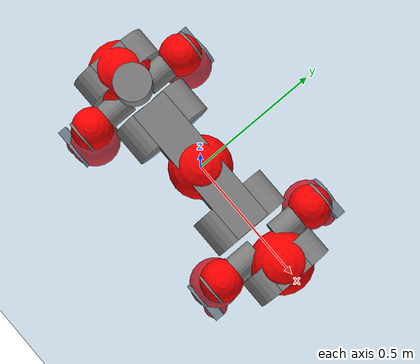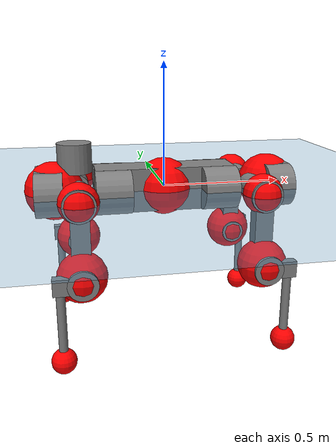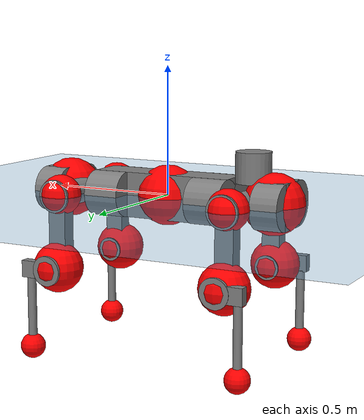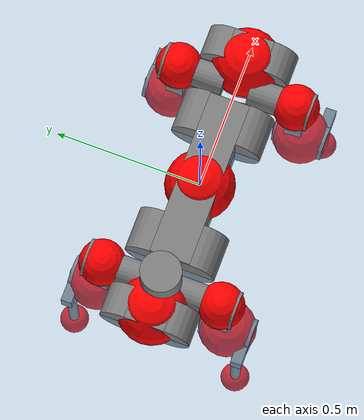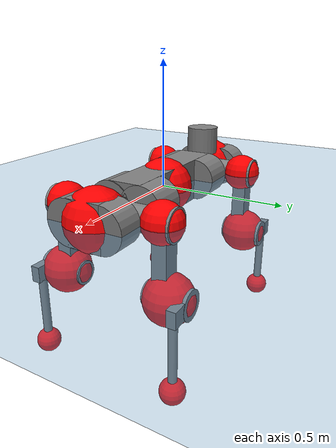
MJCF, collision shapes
<mujoco model="anymal_c">
  <compiler angle="radian" assetdir="assets" balanceinertia="true" inertiafromgeom="false"/>

  <option timestep="0.005" density="1.2" viscosity="2e-05"/>

  <size nkey="1"/>

  <visual>
    <quality shadowsize="8192"/>
    <map shadowclip="0.5"/>
  </visual>

  <default>
    <default class="/">
      <material specular="0" shininess="0.25"/>
      <geom contype="0" conaffinity="0" group="1" solref="-1000 -80"/>
      <site size="0.01 0.005 0.005" group="5"/>
      <general forcelimited="true" forcerange="-80 80" biastype="affine" gainprm="80" biasprm="0 -80 -2"/>
      <default class="anymal_c">
        <joint armature="0.01" damping="0.01" frictionloss="0.1"/>
        <default class="visual">
          <geom type="mesh" group="2"/>
          <default class="visual_zflip"/>
        </default>
        <default class="collision">
          <geom type="cylinder" group="3"/>
          <default class="foot">
            <geom size="0.03 0 0" type="sphere" condim="6" priority="1" friction="0.8 0.02 0.01" solimp="0.015 1 0.03"/>
          </default>
        </default>
      </default>
      <default class="reward_collision_sphere">
        <geom group="5" rgba="1 0 0 1"/>
      </default>
    </default>
  </default>

  <asset>
    <texture type="skybox" colorspace="auto" name="//unnamed_texture_0" builtin="gradient" rgb1="0.95 0.95 0.95" rgb2="0.95 0.95 0.95" width="100" height="600"/>
    <texture type="2d" colorspace="auto" name="texplane" builtin="checker" rgb1="0.345 0.575 0.748" rgb2="0.345 0.575 0.748" markrgb="1 1 1" width="512" height="512"/>
    <texture type="2d" colorspace="linear" name="base" file="base.png"/>
    <texture type="2d" colorspace="linear" name="top_shell" file="top_shell.png"/>
    <texture type="2d" colorspace="linear" name="bottom_shell" file="bottom_shell.png"/>
    <texture type="2d" colorspace="linear" name="remote" file="remote.png"/>
    <texture type="2d" colorspace="linear" name="hatch" file="hatch.png"/>
    <texture type="2d" colorspace="linear" name="handle" file="handle.png"/>
    <texture type="2d" colorspace="linear" name="face" file="face.png"/>
    <texture type="2d" colorspace="linear" name="battery" file="battery.png"/>
    <texture type="2d" colorspace="linear" name="lidar_cage" file="lidar_cage.png"/>
    <texture type="2d" colorspace="linear" name="depth_camera" file="depth_camera.png"/>
    <texture type="2d" colorspace="linear" name="wide_angle_camera" file="wide_angle_camera.png"/>
    <texture type="2d" colorspace="linear" name="lidar" file="lidar.png"/>
    <texture type="2d" colorspace="linear" name="drive" file="drive.png"/>
    <texture type="2d" colorspace="linear" name="hip_l" file="hip_l.png"/>
    <texture type="2d" colorspace="linear" name="shank_l" file="shank_l.png"/>
    <texture type="2d" colorspace="linear" name="foot" file="foot.png"/>
    <texture type="2d" colorspace="linear" name="thigh" file="thigh.png"/>
    <texture type="2d" colorspace="linear" name="shank_r" file="shank_r.png"/>
    <texture type="2d" colorspace="linear" name="hip_r" file="hip_r.png"/>
    <material name="MatPlane" class="/" texture="texplane" texuniform="true" texrepeat="2 2" specular="0.9" shininess="0.5"/>
    <material name="black_plastic" class="/" rgba="0.007 0.007 0.007 1"/>
    <material name="green" class="/" rgba="0.052 0.178 0.033 1"/>
    <material name="red" class="/" rgba="0.178 0.006 0.005 1"/>
    <material name="yellow" class="/" rgba="0.178 0.119 0.006 1"/>
    <material name="lwl" class="/" rgba="0.8 0.8 0.8 1"/>
    <material name="base" class="/" texture="base"/>
    <material name="top_shell" class="/" texture="top_shell"/>
    <material name="bottom_shell" class="/" texture="bottom_shell"/>
    <material name="hip_l" class="/" texture="hip_l"/>
    <material name="thigh" class="/" texture="thigh"/>
    <material name="shank_l" class="/" texture="shank_l"/>
    <material name="foot" class="/" texture="foot"/>
    <material name="hip_r" class="/" texture="hip_r"/>
    <material name="shank" class="/" texture="shank_r"/>
    <material name="hatch" class="/" texture="hatch"/>
    <material name="remote" class="/" texture="remote"/>
    <material name="handle" class="/" texture="handle"/>
    <material name="face" class="/" texture="face"/>
    <material name="depth_camera" class="/" texture="depth_camera"/>
    <material name="wide_angle_camera" class="/" texture="wide_angle_camera"/>
    <material name="battery" class="/" texture="battery"/>
    <material name="lidar_cage" class="/" texture="lidar_cage"/>
    <material name="lidar" class="/" texture="lidar"/>
    <material name="drive" class="/" texture="drive"/>
    <mesh name="base_0" class="/" file="base_0.obj"/>
    <mesh name="base_1" class="/" file="base_1.obj"/>
    <mesh name="base_2" class="/" file="base_2.obj"/>
    <mesh name="base_3" class="/" file="base_3.obj"/>
    <mesh name="base_4" class="/" file="base_4.obj"/>
    <mesh name="base_5" class="/" file="base_5.obj"/>
    <mesh name="top_shell" class="/" file="top_shell.obj"/>
    <mesh name="bottom_shell" class="/" file="bottom_shell.obj"/>
    <mesh name="remote" class="/" file="remote.obj"/>
    <mesh name="handle" class="/" file="handle.obj"/>
    <mesh name="face" class="/" file="face.obj"/>
    <mesh name="wide_angle_camera" class="/" file="wide_angle_camera.obj"/>
    <mesh name="depth_camera" class="/" file="depth_camera.obj"/>
    <mesh name="battery" class="/" file="battery.obj"/>
    <mesh name="lidar_cage" class="/" file="lidar_cage.obj"/>
    <mesh name="lidar" class="/" file="lidar.obj"/>
    <mesh name="drive" class="/" file="drive.obj"/>
    <mesh name="hip_l" class="/" file="hip_l.obj"/>
    <mesh name="thigh" class="/" file="thigh.obj"/>
    <mesh name="shank_l" class="/" file="shank_l.obj"/>
    <mesh name="foot" class="/" file="foot.obj"/>
    <mesh name="hip_r" class="/" file="hip_r.obj"/>
    <mesh name="hatch" class="/" file="hatch.obj"/>
    <mesh name="shank_r" class="/" file="shank_r.obj"/>
  </asset>

  <worldbody>
    <geom name="floor" class="/" size="100 100 0.125" type="plane" group="0" material="MatPlane"/>
    <light name="toplight_shadow" class="/" pos="0 0 5" dir="0.0990148 0.0990148 -0.990148" type="directional" ambient="0.04 0.04 0.04" diffuse="0.55 0.55 0.55" specular="0.12 0.12 0.12"/>
    <light name="toplight_fill" class="/" pos="0 0 5" dir="0.0990148 0.0990148 -0.990148" type="directional" castshadow="false" ambient="0.04 0.04 0.04" diffuse="0.3 0.3 0.3" specular="0.08 0.08 0.08"/>
    <body name="trunk" childclass="anymal_c" pos="-0.000476471 9.69588e-05 0.000186789" quat="1 -0.000111918 -2.19599e-05 8.92507e-05">
      <inertial pos="0.00164529 0.000280967 0.0493857" quat="0.498561 0.499864 0.499865 0.501705" mass="17.9902" diaginertia="0.616464 0.496074 0.208227"/>
      <joint name="//unnamed_joint_0" type="free" armature="0" damping="0" frictionloss="0"/>
      <geom name="//unnamed_geom_1" class="visual" material="green" mesh="base_0"/>
      <geom name="//unnamed_geom_2" class="visual" material="yellow" mesh="base_1"/>
      <geom name="//unnamed_geom_3" class="visual" material="red" mesh="base_2"/>
      <geom name="//unnamed_geom_4" class="visual" material="black_plastic" mesh="base_3"/>
      <geom name="//unnamed_geom_5" class="visual" material="lwl" mesh="base_4"/>
      <geom name="//unnamed_geom_6" class="visual" material="base" mesh="base_5"/>
      <geom name="trunk_1" class="collision" size="0.284145 0.0685867 0.0881829" type="box"/>
      <geom name="trunk_2" class="collision" size="0.0881829 0.0710362" pos="0.215923 0.0669092 0" quat="0.707107 0 0.707107 0"/>
      <geom name="trunk_3" class="collision" size="0.0881829 0.0710362" pos="-0.215923 0.0669092 0" quat="0.707107 0 0.707107 0"/>
      <geom name="trunk_4" class="collision" size="0.0881829 0.0710362" pos="0.215923 -0.0669092 0" quat="0.707107 0 0.707107 0"/>
      <geom name="trunk_5" class="collision" size="0.0881829 0.0710362" pos="-0.215923 -0.0669092 0" quat="0.707107 0 0.707107 0"/>
      <geom name="//unnamed_geom_12" class="visual" material="top_shell" mesh="top_shell"/>
      <geom name="//unnamed_geom_13" class="visual" material="bottom_shell" mesh="bottom_shell"/>
      <geom name="//unnamed_geom_14" class="visual" material="remote" mesh="remote"/>
      <geom name="//unnamed_geom_15" class="visual" material="handle" mesh="handle"/>
      <geom name="//unnamed_geom_16" class="visual" pos="0.411495 0 0" quat="1 0 0 0" material="face" mesh="face"/>
      <geom name="trunk_6" class="collision" size="0.0538895 0.0685867 0.0881829" pos="0.466096 0 0" type="box"/>
      <geom name="//unnamed_geom_18" class="collision" size="0.0881829 0.0538895" pos="0.466096 0.0669092 0" quat="0.707107 0 0.707107 0"/>
      <geom name="//unnamed_geom_19" class="collision" size="0.0881829 0.0538895" pos="0.466096 -0.0669092 0" quat="0.707107 0 0.707107 0"/>
      <geom name="//unnamed_geom_20" class="visual" pos="0.458303 0 -0.0289178" quat="0.965926 0 0.258819 0" material="depth_camera" mesh="depth_camera"/>
      <geom name="//unnamed_geom_21" class="visual" pos="0.509281 0 0.0148328" material="wide_angle_camera" mesh="wide_angle_camera"/>
      <geom name="//unnamed_geom_22" class="visual_zflip" pos="-0.411495 0 0" quat="0 0 0 1" material="face" mesh="face"/>
      <geom name="trunk_7" class="collision" size="0.0538895 0.0685867 0.0881829" pos="-0.466096 0 0" quat="0 0 0 1" type="box"/>
      <geom name="//unnamed_geom_24" class="collision" size="0.0881829 0.0538895" pos="-0.466096 -0.0669092 0" quat="0 -0.707107 0 0.707107"/>
      <geom name="//unnamed_geom_25" class="collision" size="0.0881829 0.0538895" pos="-0.466096 0.0669092 0" quat="0 -0.707107 0 0.707107"/>
      <geom name="//unnamed_geom_26" class="visual" pos="-0.458303 0 -0.0289178" quat="0 -0.258819 0 0.965926" material="depth_camera" mesh="depth_camera"/>
      <geom name="//unnamed_geom_27" class="visual_zflip" pos="-0.509281 0 0.0148328" quat="0 0 0 1" material="wide_angle_camera" mesh="wide_angle_camera"/>
      <geom name="//unnamed_geom_28" class="visual" material="battery" mesh="battery"/>
      <geom name="//unnamed_geom_29" class="visual" pos="0 0.0725996 0.0287983" quat="0.683013 -0.183013 0.183013 0.683013" material="depth_camera" mesh="depth_camera"/>
      <geom name="//unnamed_geom_30" class="visual" pos="0 -0.0725996 0.0287983" quat="0.683013 0.183013 0.183013 -0.683013" material="depth_camera" mesh="depth_camera"/>
      <geom name="//unnamed_geom_31" class="visual" pos="-0.361361 0 0.0728262" quat="1 0 0 0" material="lidar_cage" mesh="lidar_cage"/>
      <geom name="trunk_8" class="collision" size="0.0685867 0.0587886" pos="-0.361361 0 0.132276"/>
      <geom name="//unnamed_geom_33" class="visual" pos="-0.361361 -1.44991e-05 0.140896" quat="0.707107 0 0 -0.707107" material="lidar" mesh="lidar"/>
      <geom name="//unnamed_geom_34" class="visual" pos="0.297726 0.0994203 -6.03544e-10" quat="0.258819 0.965926 0 0" material="drive" mesh="drive"/>
      <geom name="//unnamed_geom_35" class="visual" pos="0.297726 -0.0994203 6.03544e-10" quat="0.258819 -0.965926 0 0" material="drive" mesh="drive"/>
      <geom name="//unnamed_geom_36" class="visual" pos="-0.297726 0.0994203 6.03544e-10" quat="0 0 0.965926 -0.258819" material="drive" mesh="drive"/>
      <geom name="//unnamed_geom_37" class="visual" pos="-0.297726 -0.0994203 -6.03544e-10" quat="0 0 -0.965926 -0.258819" material="drive" mesh="drive"/>
      <geom name="//unnamed_geom_38" class="visual" pos="0.115159 0 0.0723308" quat="1 0 0 0" material="hatch" mesh="hatch"/>
      <geom name="//unnamed_geom_39" class="reward_collision_sphere" size="0.117577"/>
      <geom name="//unnamed_geom_40" class="reward_collision_sphere" size="0.117577" pos="0.446738 0 0"/>
      <geom name="//unnamed_geom_41" class="reward_collision_sphere" size="0.117577" pos="-0.446738 0 0"/>
      <site name="imu" pos="0.246533 0.00780776 0.0464127" size="0.0097981"/>
      <camera name="track" pos="0 -1.91169 0" quat="0.707107 0.707107 0 0" mode="trackcom"/>
      <camera name="ego_camera" pos="0.446738 0 -0.0396333" quat="-0.5 -0.5 0.5 0.5"/>
      <body name="LF_HIP" pos="0.298961 0.1006 0.000541428" quat="0.25882 0.965926 -1.01994e-06 -4.48322e-06">
        <inertial pos="0.0562813 -0.013518 -0.00778196" quat="-0.128303 0.709824 -0.135088 0.679293" mass="2.57827" diaginertia="0.00561421 0.00392821 0.00312247"/>
        <joint name="LF_HAA" pos="0 0 0" axis="1 -0.000463668 0.000200323" range="-0.720432 0.486816" armature="0.0098071" damping="0.00642447" frictionloss="0.102199"/>
        <geom name="//unnamed_geom_42" class="visual" pos="0 -3.55038e-05 5.83147e-06" quat="0.258819 -0.965926 0 0" material="hip_l" mesh="hip_l"/>
        <geom name="//unnamed_geom_43" class="visual" pos="0.0594658 -0.0715819 -0.0415866" quat="0.183013 -0.683013 0.683013 0.183013" material="drive" mesh="drive"/>
        <geom name="//unnamed_geom_44" class="collision" size="0.0489905 0.0685867" pos="0.0594658 -0.0114317 -0.0068417" quat="-0.353553 -0.612372 0.612372 -0.353553"/>
        <body name="LF_THIGH" pos="0.0604277 -0.0698627 -0.0420953" quat="0.18304 -0.683094 0.682951 0.182912">
          <inertial pos="0.030673 0.00014639 -0.244036" quat="0.993069 -0.00736725 -0.0789274 0.0867762" mass="2.93007" diaginertia="0.0293019 0.0238342 0.00402988"/>
          <joint name="LF_HFE" pos="0 0 0" axis="0.999999 0.000367802 0.000968134" stiffness="0.00383954" range="-3.15328 3.12118" armature="0.00956075" damping="0.00492229" frictionloss="0.10153"/>
          <geom name="//unnamed_geom_45" class="visual" pos="0.00073427 1.15704e-06 0" quat="0.707107 0 0 -0.707107" material="thigh" mesh="thigh"/>
          <geom name="//unnamed_geom_46" class="collision" size="0.0636876 0.0391924" pos="0.03971 0 0" quat="0.5 0.5 -0.5 -0.5"/>
          <geom name="//unnamed_geom_47" class="collision" size="0.0367429 0.0293943 0.138461" pos="0.0297825 0 -0.140019" quat="0.707107 0 0 -0.707107" type="box"/>
          <geom name="//unnamed_geom_48" class="visual" pos="0.0995729 0 -0.282387" quat="1 0 0 0" material="drive" mesh="drive"/>
          <geom name="//unnamed_geom_49" class="collision" size="0.0489905 0.0685867" pos="0.0300803 0 -0.282387" quat="0.707107 0 0.707107 0"/>
          <geom name="//unnamed_geom_50" class="reward_collision_sphere" size="0.0783848" pos="0.0248188 0 0"/>
          <body name="LF_SHANK" pos="0.10009 -0.00081937 -0.282536" quat="1 0.000175272 -0.0001812 -9.17466e-05">
            <inertial pos="0.0055482 -0.0580732 -0.0795804" quat="0.993027 -0.115066 -0.00144373 -0.025612" mass="0.550722" diaginertia="0.00984318 0.00732169 0.00107099"/>
            <joint name="LF_KFE" pos="0 0 0" axis="1 -0.000143442 0.000950901" range="-3.15739 3.13903" armature="0.00993672" damping="0.00791492" frictionloss="0.0985818"/>
            <geom name="//unnamed_geom_51" class="visual" pos="0.000239429 0.00127665 0" quat="0.707107 0 0 -0.707107" material="shank_l" mesh="shank_l"/>
            <geom name="LF_kfe_act" class="collision" size="0.0587886 0.0195962" pos="0.019855 0 0" quat="0.5 0.5 -0.5 -0.5"/>
            <geom name="//unnamed_geom_53" class="collision" size="0.0563381 0.0330686 0.0186164" pos="0.019855 -0.0549601 0" quat="0.5 0.5 -0.5 -0.5" type="box"/>
            <geom name="//unnamed_geom_54" class="visual" pos="0.0129553 -0.0836552 -0.334872" quat="0.382683 0 0 -0.92388" material="foot" mesh="foot"/>
            <geom name="LF_calf" class="collision" size="0.0171467 0.1384" pos="0.0129554 -0.0840666 -0.167436" quat="0.707107 0 0 -0.707107"/>
            <geom name="LF_foot" class="foot" size="0.0304014" pos="0.0129554 -0.0840666 -0.312578" quat="0.707107 0 0 -0.707107"/>
            <geom name="//unnamed_geom_57" class="reward_collision_sphere" size="0.097981" pos="-0.0496375 0 0"/>
            <geom name="//unnamed_geom_58" class="reward_collision_sphere" size="0.0489905" pos="0.0129554 -0.0840666 -0.312578"/>
            <site name="LF_foot" class="foot" pos="0.0129554 -0.0840666 -0.312578" quat="0.707107 0 0 -0.707107" size="0.0097981"/>
          </body>
        </body>
      </body>
      <body name="RF_HIP" pos="0.298378 -0.0999057 1.591e-05" quat="0.258809 -0.965928 -5.49111e-06 -2.56488e-06">
        <inertial pos="0.0571997 0.0144631 -0.00742805" quat="0.1361 0.679889 0.127952 0.709124" mass="2.63082" diaginertia="0.00571294 0.00392706 0.00318114"/>
        <joint name="RF_HAA" pos="0 0 0" axis="0.999986 -0.0049867 0.00161978" range="-0.491148 0.719734" armature="0.0097716" damping="0.0125904" frictionloss="0.0984128"/>
        <geom name="//unnamed_geom_59" class="visual" pos="0 3.55035e-05 5.83145e-06" quat="0.258819 0.965926 0 0" material="hip_r" mesh="hip_r"/>
        <geom name="//unnamed_geom_60" class="visual" pos="0.0594658 0.0715819 -0.0415866" quat="0.183013 0.683013 0.683013 -0.183013" material="drive" mesh="drive"/>
        <geom name="//unnamed_geom_61" class="collision" size="0.0489905 0.0685867" pos="0.0594658 0.0114317 -0.0068417" quat="-0.353553 0.612372 0.612372 0.353553"/>
        <body name="RF_THIGH" pos="0.0591409 0.0695655 -0.0416443" quat="0.182839 0.68327 0.682843 -0.182862">
          <inertial pos="0.0306536 -0.000402304 -0.242569" quat="0.993229 -0.00506402 -0.0779486 0.0859866" mass="2.84959" diaginertia="0.0293528 0.0239316 0.00397596"/>
          <joint name="RF_HFE" pos="0 0 0" axis="1 1.4714e-06 9.37959e-07" stiffness="0.00771987" range="-3.1378 3.13364" armature="0.0101948" damping="0.00961437" frictionloss="0.0972166"/>
          <geom name="//unnamed_geom_62" class="visual" pos="0.00073427 1.15704e-06 0" quat="0.707107 0 0 -0.707107" material="thigh" mesh="thigh"/>
          <geom name="//unnamed_geom_63" class="collision" size="0.0636876 0.0391924" pos="0.03971 0 0" quat="0.5 0.5 0.5 0.5"/>
          <geom name="//unnamed_geom_64" class="collision" size="0.0367429 0.0293943 0.138461" pos="0.0297825 0 -0.140019" quat="0.707107 0 0 0.707107" type="box"/>
          <geom name="//unnamed_geom_65" class="visual" pos="0.0995729 0 -0.282387" quat="1 0 0 0" material="drive" mesh="drive"/>
          <geom name="//unnamed_geom_66" class="collision" size="0.0489905 0.0685867" pos="0.0300803 0 -0.282387" quat="0.707107 0 0.707107 0"/>
          <geom name="//unnamed_geom_67" class="reward_collision_sphere" size="0.0783848" pos="0.0248188 0 0"/>
          <body name="RF_SHANK" pos="0.10018 -0.000198648 -0.282493" quat="1 -2.84596e-05 0.000176946 -0.000247492">
            <inertial pos="0.00642751 0.0585792 -0.0798035" quat="0.992937 0.116121 -0.000670956 0.0243343" mass="0.543085" diaginertia="0.00969377 0.00733221 0.00105709"/>
            <joint name="RF_KFE" pos="0 0 0" axis="0.999994 0.00332363 -6.8895e-05" range="-3.13178 3.1528" armature="0.00942814" damping="0.00764736" frictionloss="0.0964584"/>
            <geom name="//unnamed_geom_68" class="visual" pos="0.000239428 -0.00127665 0" quat="0.707107 0 0 0.707107" material="shank" mesh="shank_r"/>
            <geom name="RF_kfe_act" class="collision" size="0.0587886 0.0195962" pos="0.019855 0 0" quat="0.5 0.5 0.5 0.5"/>
            <geom name="//unnamed_geom_70" class="collision" size="0.0563381 0.0330686 0.0186164" pos="0.019855 0.0549601 0" quat="0.5 0.5 0.5 0.5" type="box"/>
            <geom name="//unnamed_geom_71" class="visual" pos="0.0129555 0.0836552 -0.334872" quat="0.382683 0 0 0.92388" material="foot" mesh="foot"/>
            <geom name="RF_calf" class="collision" size="0.0171467 0.1384" pos="0.0129554 0.0840666 -0.167436" quat="0.707107 0 0 0.707107"/>
            <geom name="RF_foot" class="foot" size="0.0295004" pos="0.0129554 0.0840666 -0.312578" quat="0.707107 0 0 0.707107"/>
            <geom name="//unnamed_geom_74" class="reward_collision_sphere" size="0.097981" pos="-0.0496375 0 0"/>
            <geom name="//unnamed_geom_75" class="reward_collision_sphere" size="0.0489905" pos="0.0129554 0.0840666 -0.312578"/>
            <site name="RF_foot" class="foot" pos="0.0129554 0.0840666 -0.312578" quat="0.707107 0 0 0.707107" size="0.0097981"/>
          </body>
        </body>
      </body>
      <body name="LH_HIP" pos="-0.297432 0.10041 0.000583537" quat="-7.54165e-05 8.99211e-05 0.965894 -0.258938">
        <inertial pos="0.0563474 0.0135537 -0.00842249" quat="0.13261 0.679583 0.12565 0.710488" mass="2.61763" diaginertia="0.00570008 0.00390519 0.00316864"/>
        <joint name="LH_HAA" pos="0 0 0" axis="0.999999 -0.00132227 -0.000945251" range="-0.497285 0.723997" armature="0.00988422" damping="0.0075436" frictionloss="0.0982278"/>
        <geom name="//unnamed_geom_76" class="visual" pos="0 3.55035e-05 5.83145e-06" quat="-0.258819 -0.965926 0 0" material="hip_r" mesh="hip_r"/>
        <geom name="//unnamed_geom_77" class="visual" pos="0.0594658 0.0715819 -0.0415866" quat="0.183013 0.683013 0.683013 -0.183013" material="drive" mesh="drive"/>
        <geom name="//unnamed_geom_78" class="collision" size="0.0489905 0.0685867" pos="0.0594658 0.0114317 -0.0068417" quat="-0.353553 0.612372 0.612372 0.353553"/>
        <body name="LH_THIGH" pos="0.0588543 0.0696605 -0.0418852" quat="0.183008 0.683 0.683028 -0.183007">
          <inertial pos="0.0300973 0.000205922 -0.24335" quat="0.992775 -0.00514189 -0.0806597 0.0886824" mass="2.92249" diaginertia="0.0293329 0.0238433 0.00404234"/>
          <joint name="LH_HFE" pos="0 0 0" axis="1 0.000126955 0.000536064" range="-3.13016 3.1569" armature="0.00997316" damping="0.0127481" frictionloss="0.0978472"/>
          <geom name="//unnamed_geom_79" class="visual" pos="0.00073427 1.15704e-06 0" quat="0.707107 0 0 -0.707107" material="thigh" mesh="thigh"/>
          <geom name="//unnamed_geom_80" class="collision" size="0.0636876 0.0391924" pos="0.03971 0 0" quat="0.5 0.5 -0.5 -0.5"/>
          <geom name="//unnamed_geom_81" class="collision" size="0.0367429 0.0293943 0.138461" pos="0.0297825 0 -0.140019" quat="0.707107 0 0 -0.707107" type="box"/>
          <geom name="//unnamed_geom_82" class="visual" pos="0.0995729 0 -0.282387" quat="1 0 0 0" material="drive" mesh="drive"/>
          <geom name="//unnamed_geom_83" class="collision" size="0.0489905 0.0685867" pos="0.0300803 0 -0.282387" quat="0.707107 0 0.707107 0"/>
          <geom name="//unnamed_geom_84" class="reward_collision_sphere" size="0.0783848" pos="0.0248188 0 0"/>
          <body name="LH_SHANK" pos="0.099579 -0.000309865 -0.282605" quat="1 -3.39419e-06 -1.66454e-05 8.27804e-05">
            <inertial pos="0.00489148 0.0580405 -0.0801606" quat="0.993086 0.114364 0.00270402 0.0263262" mass="0.558284" diaginertia="0.00998473 0.00738567 0.00108221"/>
            <joint name="LH_KFE" pos="0 0 0" axis="0.999998 -0.00171131 -0.000507682" stiffness="0.000869535" range="-3.15535 3.15784" armature="0.00976529" damping="0.00648215" frictionloss="0.101055"/>
            <geom name="//unnamed_geom_85" class="visual" pos="0.000239428 -0.00127665 0" quat="-0.707107 0 0 -0.707107" material="shank" mesh="shank_r"/>
            <geom name="LH_kfe_act" class="collision" size="0.0587886 0.0195962" pos="0.019855 0 0" quat="0.5 0.5 -0.5 -0.5"/>
            <geom name="//unnamed_geom_87" class="collision" size="0.0563381 0.0330686 0.0186164" pos="0.019855 0.0549601 0" quat="0.5 0.5 -0.5 -0.5" type="box"/>
            <geom name="//unnamed_geom_88" class="visual" pos="0.0129555 0.0836552 -0.334872" quat="-0.382683 0 0 -0.92388" material="foot" mesh="foot"/>
            <geom name="LH_calf" class="collision" size="0.0171467 0.1384" pos="0.0129554 0.0840666 -0.167436" quat="0.707107 0 0 -0.707107"/>
            <geom name="LH_foot" class="foot" size="0.0299305" pos="0.0129554 0.0840666 -0.312578" quat="0.707107 0 0 -0.707107"/>
            <geom name="//unnamed_geom_91" class="reward_collision_sphere" size="0.097981" pos="-0.0496375 0 0"/>
            <geom name="//unnamed_geom_92" class="reward_collision_sphere" size="0.0489905" pos="0.0129554 0.0840666 -0.312578"/>
            <site name="LH_foot" class="foot" pos="0.0129554 0.0840666 -0.312578" quat="0.707107 0 0 -0.707107" size="0.0097981"/>
          </body>
        </body>
      </body>
      <body name="RH_HIP" pos="-0.297126 -0.0992994 -0.000400402" quat="3.24897e-05 3.83287e-05 -0.965925 -0.258822">
        <inertial pos="0.057039 -0.0153143 -0.00860552" quat="-0.126391 0.707981 -0.137099 0.681169" mass="2.57996" diaginertia="0.00562223 0.00390671 0.0031239"/>
        <joint name="RH_HAA" pos="0 0 0" axis="1 0.000367766 -0.000458717" range="-0.718108 0.479002" armature="0.00987941" damping="0.0141337" frictionloss="0.0980717"/>
        <geom name="//unnamed_geom_93" class="visual" pos="0 -3.55038e-05 5.83147e-06" quat="-0.258819 0.965926 0 0" material="hip_l" mesh="hip_l"/>
        <geom name="//unnamed_geom_94" class="visual" pos="0.0594658 -0.0715819 -0.0415866" quat="-0.183013 0.683013 -0.683013 -0.183013" material="drive" mesh="drive"/>
        <geom name="//unnamed_geom_95" class="collision" size="0.0489905 0.0685867" pos="0.0594658 -0.0114317 -0.0068417" quat="0.353553 0.612372 -0.612372 0.353553"/>
        <body name="RH_THIGH" pos="0.0595596 -0.069832 -0.0419029" quat="-0.182875 0.68306 -0.683086 -0.1827">
          <inertial pos="0.0307896 -0.000741955 -0.242783" quat="0.993167 -0.00544628 -0.0809764 0.0838555" mass="2.94794" diaginertia="0.0297676 0.0241902 0.00404222"/>
          <joint name="RH_HFE" pos="0 0 0" axis="0.999998 0.000549606 0.00183668" range="-3.15573 3.13473" armature="0.00967197" damping="0.00481514" frictionloss="0.0986569"/>
          <geom name="//unnamed_geom_96" class="visual" pos="0.00073427 1.15704e-06 0" quat="0.707107 0 0 -0.707107" material="thigh" mesh="thigh"/>
          <geom name="//unnamed_geom_97" class="collision" size="0.0636876 0.0391924" pos="0.03971 0 0" quat="0.5 0.5 0.5 0.5"/>
          <geom name="//unnamed_geom_98" class="collision" size="0.0367429 0.0293943 0.138461" pos="0.0297825 0 -0.140019" quat="0.707107 0 0 0.707107" type="box"/>
          <geom name="//unnamed_geom_99" class="visual" pos="0.0995729 0 -0.282387" quat="1 0 0 0" material="drive" mesh="drive"/>
          <geom name="//unnamed_geom_100" class="collision" size="0.0489905 0.0685867" pos="0.0300803 0 -0.282387" quat="0.707107 0 0.707107 0"/>
          <geom name="//unnamed_geom_101" class="reward_collision_sphere" size="0.0783848" pos="0.0248188 0 0"/>
          <body name="RH_SHANK" pos="0.0993827 -5.57379e-05 -0.28266" quat="1 -2.44809e-05 0.000114491 4.03975e-05">
            <inertial pos="0.00485633 -0.0582303 -0.0795087" quat="0.992672 -0.11728 -0.000771719 -0.0290903" mass="0.550894" diaginertia="0.00983293 0.0073661 0.00107661"/>
            <joint name="RH_KFE" pos="0 0 0" axis="0.999987 0.00466196 0.00186551" range="-3.131 3.12987" armature="0.0097749" damping="0.00775707" frictionloss="0.0966281"/>
            <geom name="//unnamed_geom_102" class="visual" pos="0.000239429 0.00127665 0" quat="0.707107 0 0 -0.707107" material="shank_l" mesh="shank_l"/>
            <geom name="RH_kfe_act" class="collision" size="0.0587886 0.0195962" pos="0.019855 0 0" quat="0.5 0.5 0.5 0.5"/>
            <geom name="//unnamed_geom_104" class="collision" size="0.0563381 0.0330686 0.0186164" pos="0.019855 -0.0549601 0" quat="0.5 0.5 0.5 0.5" type="box"/>
            <geom name="//unnamed_geom_105" class="visual" pos="0.0129553 -0.0836552 -0.334872" quat="0.382683 0 0 -0.92388" material="foot" mesh="foot"/>
            <geom name="RH_calf" class="collision" size="0.0171467 0.1384" pos="0.0129554 -0.0840666 -0.167436" quat="0.707107 0 0 0.707107"/>
            <geom name="RH_foot" class="foot" size="0.0288076" pos="0.0129554 -0.0840666 -0.312578" quat="0.707107 0 0 0.707107"/>
            <geom name="//unnamed_geom_108" class="reward_collision_sphere" size="0.097981" pos="-0.0496375 0 0"/>
            <geom name="//unnamed_geom_109" class="reward_collision_sphere" size="0.0489905" pos="0.0129554 -0.0840666 -0.312578"/>
            <site name="RH_foot" class="foot" pos="0.0129554 -0.0840666 -0.312578" quat="0.707107 0 0 0.707107" size="0.0097981"/>
          </body>
        </body>
      </body>
    </body>
  </worldbody>

  <contact>
    <pair class="/" geom1="floor" geom2="LF_foot" name="//unnamed_contact_0"/>
    <pair class="/" geom1="floor" geom2="RF_foot" name="//unnamed_contact_1"/>
    <pair class="/" geom1="floor" geom2="LH_foot" name="//unnamed_contact_2"/>
    <pair class="/" geom1="floor" geom2="RH_foot" name="//unnamed_contact_3"/>
  </contact>

  <actuator>
    <general name="LF_HAA" class="/" joint="LF_HAA" forcerange="-81.4569 81.4569" gainprm="80.5599" biasprm="0 -80.5599 -1.94032"/>
    <general name="LF_HFE" class="/" joint="LF_HFE" forcerange="-78.4489 78.4489" gainprm="80.5599" biasprm="0 -80.5599 -1.94032"/>
    <general name="LF_KFE" class="/" joint="LF_KFE" forcerange="-77.5809 77.5809" gainprm="80.5599" biasprm="0 -80.5599 -1.94032"/>
    <general name="RF_HAA" class="/" joint="RF_HAA" forcerange="-78.6398 78.6398" gainprm="80.5599" biasprm="0 -80.5599 -1.94032"/>
    <general name="RF_HFE" class="/" joint="RF_HFE" forcerange="-77.3518 77.3518" gainprm="80.5599" biasprm="0 -80.5599 -1.94032"/>
    <general name="RF_KFE" class="/" joint="RF_KFE" forcerange="-77.5613 77.5613" gainprm="80.5599" biasprm="0 -80.5599 -1.94032"/>
    <general name="LH_HAA" class="/" joint="LH_HAA" forcerange="-78.5402 78.5402" gainprm="80.5599" biasprm="0 -80.5599 -1.94032"/>
    <general name="LH_HFE" class="/" joint="LH_HFE" forcerange="-81.3591 81.3591" gainprm="80.5599" biasprm="0 -80.5599 -1.94032"/>
    <general name="LH_KFE" class="/" joint="LH_KFE" forcerange="-78.5851 78.5851" gainprm="80.5599" biasprm="0 -80.5599 -1.94032"/>
    <general name="RH_HAA" class="/" joint="RH_HAA" forcerange="-79.5616 79.5616" gainprm="80.5599" biasprm="0 -80.5599 -1.94032"/>
    <general name="RH_HFE" class="/" joint="RH_HFE" forcerange="-77.4709 77.4709" gainprm="80.5599" biasprm="0 -80.5599 -1.94032"/>
    <general name="RH_KFE" class="/" joint="RH_KFE" forcerange="-79.969 79.969" gainprm="80.5599" biasprm="0 -80.5599 -1.94032"/>
  </actuator>

  <sensor>
    <gyro site="imu" name="imu_angular_velocity"/>
    <velocimeter site="imu" name="imu_linear_velocity"/>
    <framelinvel objtype="site" objname="LF_foot" name="LF_foot_global_linear_velocity"/>
    <framelinvel objtype="site" objname="RF_foot" name="RF_foot_global_linear_velocity"/>
    <framelinvel objtype="site" objname="LH_foot" name="LH_foot_global_linear_velocity"/>
    <framelinvel objtype="site" objname="RH_foot" name="RH_foot_global_linear_velocity"/>
  </sensor>

  <keyframe>
    <key name="home" qpos="0 0 0.55 1 0 0 0 0 0.4 -0.8 0 -0.4 0.8 0 -0.4 0.8 0 0.4 -0.8"/>
  </keyframe>
</mujoco>
